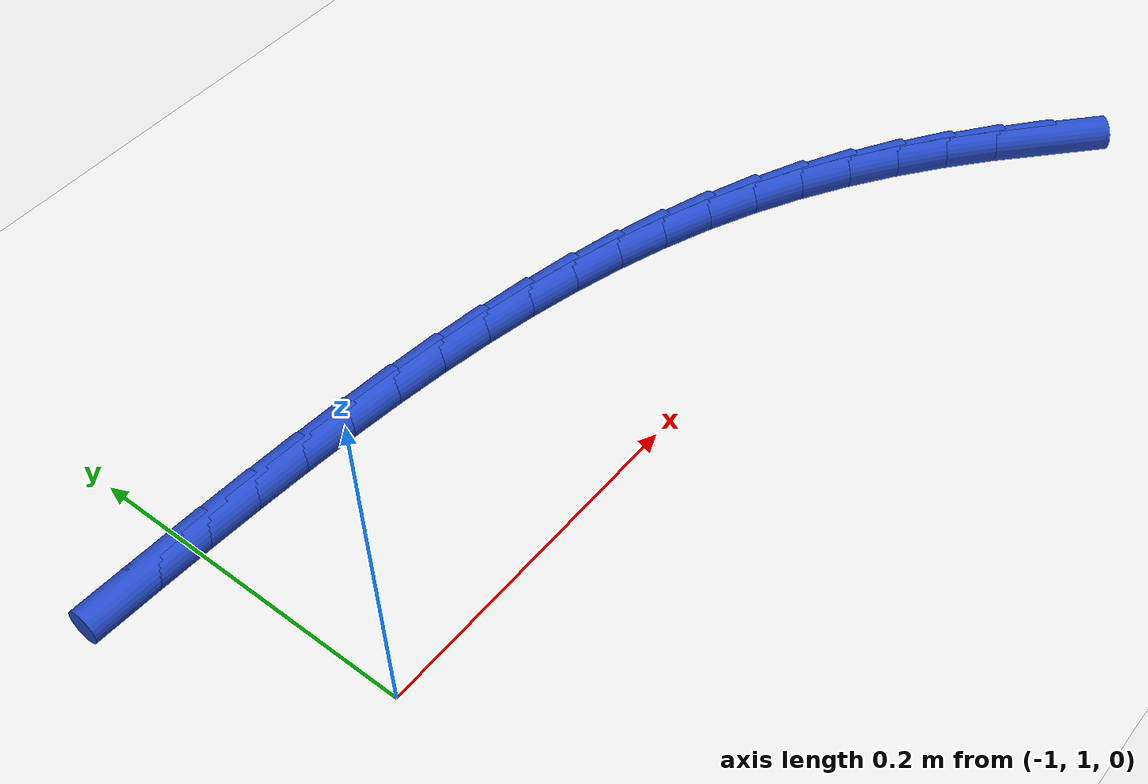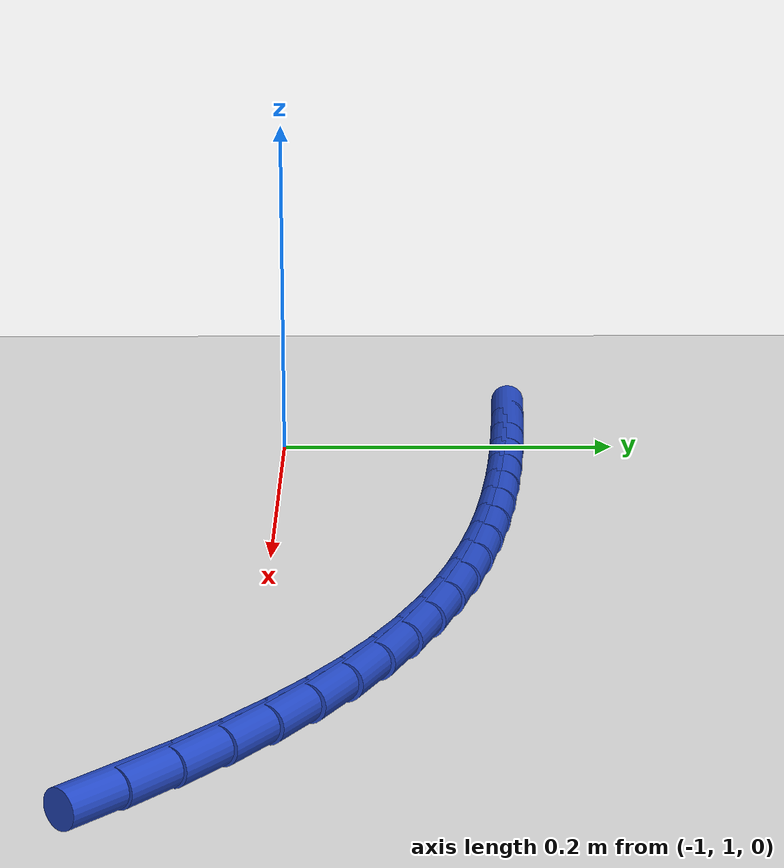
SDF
<sdf version="1.6">
 <world name="default">
  <model name="ground_plane">
   <static>1</static>
   <link name="link">
    <collision name="collision">
     <geometry><plane><normal>0 0 1</normal><size>100 100</size></plane></geometry>
     <surface><friction><ode><mu>100</mu><mu2>50</mu2></ode></friction></surface>
    </collision>
    <visual name="visual">
     <cast_shadows>0</cast_shadows>
     <geometry><plane><normal>0 0 1</normal><size>100 100</size></plane></geometry>
     <material>
      <script><uri>file://media/materials/scripts/gazebo.material</uri><name>Gazebo/WhiteGlow</name></script>
     </material>
    </visual>
   </link>
  </model>
  <model name="line">
   <link name="link_35">
    <pose>-0.4808293425623125 0.9506391375234833 0.01 0 1.57 -0.7534035131583913</pose>
    <collision name="collision">
     <geometry><cylinder><radius>0.01</radius><length>0.08</length></cylinder></geometry>
    </collision>
    <visual name="visual">
     <material>
      <script><name>Gazebo/Blue</name><uri>file://media/materials/scripts/gazebo.material</uri></script>
     </material>
     <geometry><cylinder><radius>0.01</radius><length>0.08</length></cylinder></geometry>
    </visual>
   </link>
   <link name="link_36">
    <pose>-0.5036898718559039 0.9720817203758696 0.01 0 1.57 -0.7079141387664339</pose>
    <collision name="collision">
     <geometry><cylinder><radius>0.01</radius><length>0.08</length></cylinder></geometry>
    </collision>
    <visual name="visual">
     <material>
      <script><name>Gazebo/Blue</name><uri>file://media/materials/scripts/gazebo.material</uri></script>
     </material>
     <geometry><cylinder><radius>0.01</radius><length>0.08</length></cylinder></geometry>
    </visual>
   </link>
   <link name="link_37">
    <pose>-0.5274952601130616 0.9924569492257043 0.01 0 1.57 -0.6598498970738252</pose>
    <collision name="collision">
     <geometry><cylinder><radius>0.01</radius><length>0.08</length></cylinder></geometry>
    </collision>
    <visual name="visual">
     <material>
      <script><name>Gazebo/Blue</name><uri>file://media/materials/scripts/gazebo.material</uri></script>
     </material>
     <geometry><cylinder><radius>0.01</radius><length>0.08</length></cylinder></geometry>
    </visual>
   </link>
   <link name="link_38">
    <pose>-0.5522014628034622 1.0116256129727346 0.01 0 1.57 -0.6088543799709011</pose>
    <collision name="collision">
     <geometry><cylinder><radius>0.01</radius><length>0.08</length></cylinder></geometry>
    </collision>
    <visual name="visual">
     <material>
      <script><name>Gazebo/Blue</name><uri>file://media/materials/scripts/gazebo.material</uri></script>
     </material>
     <geometry><cylinder><radius>0.01</radius><length>0.08</length></cylinder></geometry>
    </visual>
   </link>
   <link name="link_39">
    <pose>-0.5777644353967838 1.0294485005167109 0.01 0 1.57 -0.5545839367183488</pose>
    <collision name="collision">
     <geometry><cylinder><radius>0.01</radius><length>0.08</length></cylinder></geometry>
    </collision>
    <visual name="visual">
     <material>
      <script><name>Gazebo/Blue</name><uri>file://media/materials/scripts/gazebo.material</uri></script>
     </material>
     <geometry><cylinder><radius>0.01</radius><length>0.08</length></cylinder></geometry>
    </visual>
   </link>
   <link name="link_40">
    <pose>-0.604140133362703 1.045786400757381 0.01 0 1.57 -0.49672518512609604</pose>
    <collision name="collision">
     <geometry><cylinder><radius>0.01</radius><length>0.08</length></cylinder></geometry>
    </collision>
    <visual name="visual">
     <material>
      <script><name>Gazebo/Blue</name><uri>file://media/materials/scripts/gazebo.material</uri></script>
     </material>
     <geometry><cylinder><radius>0.01</radius><length>0.08</length></cylinder></geometry>
    </visual>
   </link>
   <link name="link_41">
    <pose>-0.631284503970598 1.060500221198978 0.01 0 1.57 -0.436921514748377</pose>
    <collision name="collision">
     <geometry><cylinder><radius>0.01</radius><length>0.08</length></cylinder></geometry>
    </collision>
    <visual name="visual">
     <material>
      <script><name>Gazebo/Blue</name><uri>file://media/materials/scripts/gazebo.material</uri></script>
     </material>
     <geometry><cylinder><radius>0.01</radius><length>0.08</length></cylinder></geometry>
    </visual>
   </link>
   <link name="link_42">
    <pose>-0.6591491495447752 1.0735137121696152 0.01 0 1.57 -0.3802907524330635</pose>
    <collision name="collision">
     <geometry><cylinder><radius>0.01</radius><length>0.08</length></cylinder></geometry>
    </collision>
    <visual name="visual">
     <material>
      <script><name>Gazebo/Blue</name><uri>file://media/materials/scripts/gazebo.material</uri></script>
     </material>
     <geometry><cylinder><radius>0.01</radius><length>0.08</length></cylinder></geometry>
    </visual>
   </link>
   <link name="link_43">
    <pose>-0.6876741970585053 1.084916596973423 0.01 0 1.57 -0.3279547343598413</pose>
    <collision name="collision">
     <geometry><cylinder><radius>0.01</radius><length>0.08</length></cylinder></geometry>
    </collision>
    <visual name="visual">
     <material>
      <script><name>Gazebo/Blue</name><uri>file://media/materials/scripts/gazebo.material</uri></script>
     </material>
     <geometry><cylinder><radius>0.01</radius><length>0.08</length></cylinder></geometry>
    </visual>
   </link>
   <link name="link_44">
    <pose>-0.716797900954468 1.0948256821361022 0.01 0 1.57 -0.28009509792888</pose>
    <collision name="collision">
     <geometry><cylinder><radius>0.01</radius><length>0.08</length></cylinder></geometry>
    </collision>
    <visual name="visual">
     <material>
      <script><name>Gazebo/Blue</name><uri>file://media/materials/scripts/gazebo.material</uri></script>
     </material>
     <geometry><cylinder><radius>0.01</radius><length>0.08</length></cylinder></geometry>
    </visual>
   </link>
   <link name="link_45">
    <pose>-0.7464585156753443 1.1033577741833551 0.01 0 1.57 -0.2367782605540357</pose>
    <collision name="collision">
     <geometry><cylinder><radius>0.01</radius><length>0.08</length></cylinder></geometry>
    </collision>
    <visual name="visual">
     <material>
      <script><name>Gazebo/Blue</name><uri>file://media/materials/scripts/gazebo.material</uri></script>
     </material>
     <geometry><cylinder><radius>0.01</radius><length>0.08</length></cylinder></geometry>
    </visual>
   </link>
   <link name="link_46">
    <pose>-0.7765942956638141 1.1106296796408826 0.01 0 1.57 -0.19798361673728448</pose>
    <collision name="collision">
     <geometry><cylinder><radius>0.01</radius><length>0.08</length></cylinder></geometry>
    </collision>
    <visual name="visual">
     <material>
      <script><name>Gazebo/Blue</name><uri>file://media/materials/scripts/gazebo.material</uri></script>
     </material>
     <geometry><cylinder><radius>0.01</radius><length>0.08</length></cylinder></geometry>
    </visual>
   </link>
   <link name="link_47">
    <pose>-0.8071434953625574 1.116758205034386 0.01 0 1.57 -0.16363082136410523</pose>
    <collision name="collision">
     <geometry><cylinder><radius>0.01</radius><length>0.08</length></cylinder></geometry>
    </collision>
    <visual name="visual">
     <material>
      <script><name>Gazebo/Blue</name><uri>file://media/materials/scripts/gazebo.material</uri></script>
     </material>
     <geometry><cylinder><radius>0.01</radius><length>0.08</length></cylinder></geometry>
    </visual>
   </link>
   <link name="link_48">
    <pose>-0.8380443692142551 1.121860156889567 0.01 0 1.57 -0.13360386057045262</pose>
    <collision name="collision">
     <geometry><cylinder><radius>0.01</radius><length>0.08</length></cylinder></geometry>
    </collision>
    <visual name="visual">
     <material>
      <script><name>Gazebo/Blue</name><uri>file://media/materials/scripts/gazebo.material</uri></script>
     </material>
     <geometry><cylinder><radius>0.01</radius><length>0.08</length></cylinder></geometry>
    </visual>
   </link>
   <link name="link_49">
    <pose>-0.8692351716615867 1.1260523417321266 0.01 0 1.57 -0.10777095175089277</pose>
    <collision name="collision">
     <geometry><cylinder><radius>0.01</radius><length>0.08</length></cylinder></geometry>
    </collision>
    <visual name="visual">
     <material>
      <script><name>Gazebo/Blue</name><uri>file://media/materials/scripts/gazebo.material</uri></script>
     </material>
     <geometry><cylinder><radius>0.01</radius><length>0.08</length></cylinder></geometry>
    </visual>
   </link>
   <link name="link_50">
    <pose>-0.9006541571472333 1.1294515660877666 0.01 0 1.57 -0.0860002340974835</pose>
    <collision name="collision">
     <geometry><cylinder><radius>0.01</radius><length>0.08</length></cylinder></geometry>
    </collision>
    <visual name="visual">
     <material>
      <script><name>Gazebo/Blue</name><uri>file://media/materials/scripts/gazebo.material</uri></script>
     </material>
     <geometry><cylinder><radius>0.01</radius><length>0.08</length></cylinder></geometry>
    </visual>
   </link>
   <link name="link_51">
    <pose>-0.9322395801138748 1.1321746364821883 0.01 0 1.57 -0.06817173250397061</pose>
    <collision name="collision">
     <geometry><cylinder><radius>0.01</radius><length>0.08</length></cylinder></geometry>
    </collision>
    <visual name="visual">
     <material>
      <script><name>Gazebo/Blue</name><uri>file://media/materials/scripts/gazebo.material</uri></script>
     </material>
     <geometry><cylinder><radius>0.01</radius><length>0.08</length></cylinder></geometry>
    </visual>
   </link>
   <link name="link_52">
    <pose>-0.9639296950041916 1.1343383594410932 0.01 0 1.57 -0.05418629967276317</pose>
    <collision name="collision">
     <geometry><cylinder><radius>0.01</radius><length>0.08</length></cylinder></geometry>
    </collision>
    <visual name="visual">
     <material>
      <script><name>Gazebo/Blue</name><uri>file://media/materials/scripts/gazebo.material</uri></script>
     </material>
     <geometry><cylinder><radius>0.01</radius><length>0.08</length></cylinder></geometry>
    </visual>
   </link>
   <link name="link_53">
    <pose>-0.9956627562608634 1.136059541490182 0.01 0 1.57 -0.0439722719032757</pose>
    <collision name="collision">
     <geometry><cylinder><radius>0.01</radius><length>0.08</length></cylinder></geometry>
    </collision>
    <visual name="visual">
     <material>
      <script><name>Gazebo/Blue</name><uri>file://media/materials/scripts/gazebo.material</uri></script>
     </material>
     <geometry><cylinder><radius>0.01</radius><length>0.08</length></cylinder></geometry>
    </visual>
   </link>
   <link name="link_54">
    <pose>-1.0273770183265716 1.1374549891551569 0.01 0 1.57 -0.03554836688999571</pose>
    <collision name="collision">
     <geometry><cylinder><radius>0.01</radius><length>0.08</length></cylinder></geometry>
    </collision>
    <visual name="visual">
     <material>
      <script><name>Gazebo/Blue</name><uri>file://media/materials/scripts/gazebo.material</uri></script>
     </material>
     <geometry><cylinder><radius>0.01</radius><length>0.08</length></cylinder></geometry>
    </visual>
   </link>
  </model>
 </world>
</sdf>
